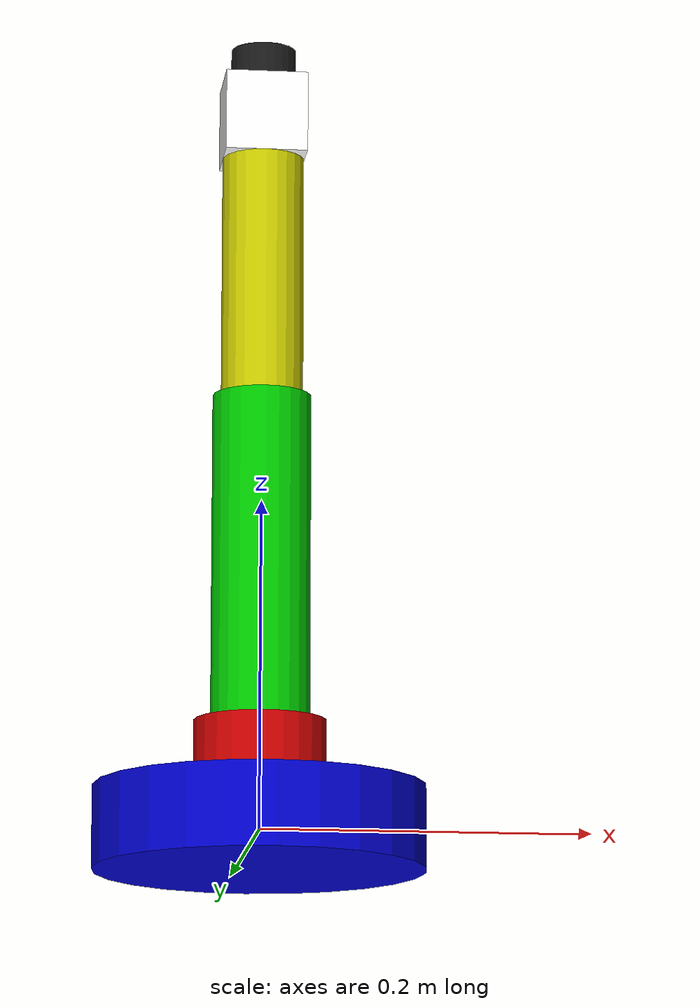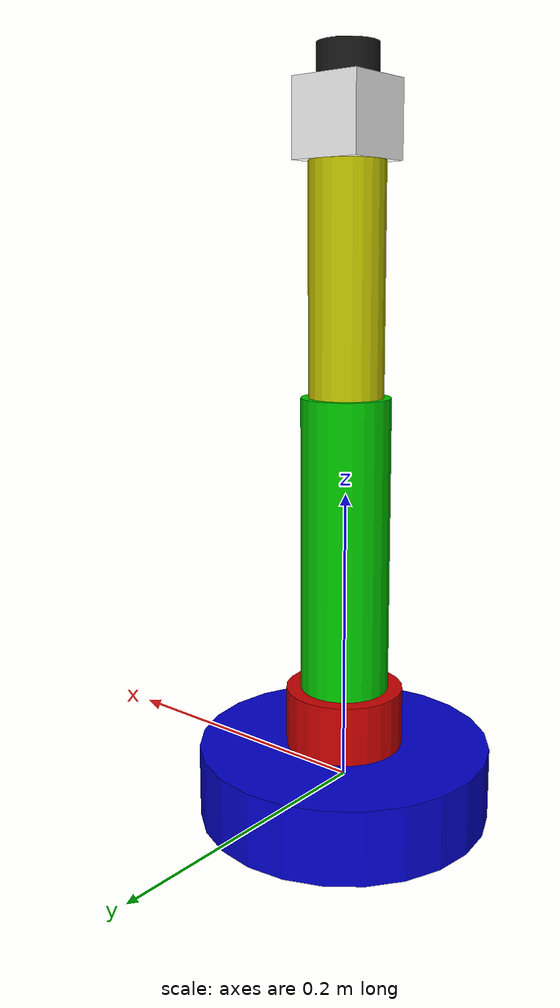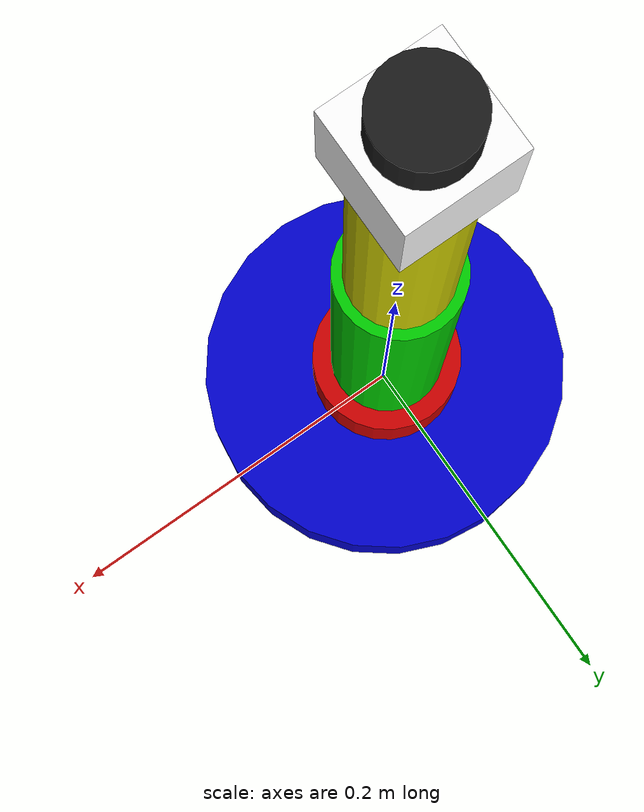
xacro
<?xml version="1.0"?>
<robot xmlns:xacro="http://www.ros.org/wiki/xacro" name="5dof_arm">
    <xacro:arg name="initial_positions_file" default="initial_positions.yaml" />

    <!-- Import 5dof_arm urdf file -->
    <xacro:include filename="$(find arm_simulation_5dof)/urdf/arm_5dof.urdf.xacro" />

    <!-- Import control_xacro -->
    <xacro:include filename="5dof_arm.ros2_control.xacro" />

    <xacro:_5dof_arm_ros2_control name="FakeSystem" initial_positions_file="$(arg initial_positions_file)"/>

</robot>

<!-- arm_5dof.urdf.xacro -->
<robot name="sim_arm" xmlns:xacro="http://www.ros.org/wiki/xacro">

  <xacro:macro name="cylinder_inertia" params="m r h">
    <inertial>
      <origin xyz="0 0 ${h/2}" rpy="0 0 0"/>
      <mass value="${m}"/>
      <inertia ixx="${(m/12) * (3*r*r + h*h)}" ixy="0.0" ixz="0.0"
               iyy="${(m/12) * (3*r*r + h*h)}" iyz="0.0"
               izz="${(m/2) * (r*r)}"/>
    </inertial>
  </xacro:macro>

  <xacro:macro name="box_inertia" params="m x y z">
    <inertial>
      <origin xyz="0 0 ${z/2}" rpy="0 0 0"/>
      <mass value="${m}"/>
      <inertia ixx="${(m/12) * (y*y + z*z)}" ixy="0.0" ixz="0.0"
               iyy="${(m/12) * (x*x + z*z)}" iyz="0.0"
               izz="${(m/12) * (x*x + y*y)}"/>
    </inertial>
  </xacro:macro>

  <link name="base_link"/>

  <joint name="base_joint" type="fixed">
    <parent link="base_link"/>
    <child link="base_plate"/>
    <origin xyz="0 0 0" rpy="0 0 0"/>
  </joint>

  <link name="base_plate">
    <visual>
      <geometry>
        <cylinder radius="0.1" length="0.05"/>
      </geometry>
      <material name="blue">
        <color rgba="0.0 0.0 0.8 1.0"/>
      </material>
    </visual>
    <collision>
      <geometry>
        <cylinder radius="0.1" length="0.05"/>
      </geometry>
    </collision>
    <xacro:cylinder_inertia m="0.5" r="0.1" h="0.05"/>
  </link>

  <joint name="base_yaw_joint" type="revolute">
    <parent link="base_plate"/>
    <child link="shoulder_link"/>
    <origin xyz="0 0 0.025" rpy="0 0 0"/>
    <axis xyz="0 0 1"/>
    <limit lower="-1.5708" upper="1.5708" effort="10" velocity="1"/>
  </joint>

  <link name="shoulder_link">
    <visual>
      <geometry>
        <cylinder radius="0.04" length="0.08"/>
      </geometry>
      <material name="red">
        <color rgba="0.8 0.0 0.0 1.0"/>
      </material>
    </visual>
    <collision>
      <geometry>
        <cylinder radius="0.04" length="0.08"/>
      </geometry>
    </collision>
    <xacro:cylinder_inertia m="0.2" r="0.04" h="0.08"/>
  </link>

  <joint name="shoulder_pitch_joint" type="revolute">
    <parent link="shoulder_link"/>
    <child link="bicep_link"/>
    <origin xyz="0 0 0.04" rpy="0 0 0"/>
    <axis xyz="0 1 0"/>
    <limit lower="-1.5708" upper="1.5708" effort="10" velocity="1"/>
  </joint>

  <link name="bicep_link">
    <visual>
      <origin xyz="0 0 0.1" rpy="0 0 0"/>
      <geometry>
        <cylinder radius="0.03" length="0.2"/>
      </geometry>
      <material name="green">
        <color rgba="0.0 0.8 0.0 1.0"/>
      </material>
    </visual>
    <collision>
      <origin xyz="0 0 0.1" rpy="0 0 0"/>
      <geometry>
        <cylinder radius="0.03" length="0.2"/>
      </geometry>
    </collision>
    <xacro:cylinder_inertia m="0.4" r="0.03" h="0.2"/>
  </link>

  <joint name="elbow_pitch_joint" type="revolute">
    <parent link="bicep_link"/>
    <child link="forearm_link"/>
    <origin xyz="0 0 0.2" rpy="0 0 0"/>
    <axis xyz="0 1 0"/>
    <limit lower="-1.5708" upper="1.5708" effort="10" velocity="1"/>
  </joint>

  <link name="forearm_link">
    <visual>
      <origin xyz="0 0 0.075" rpy="0 0 0"/>
      <geometry>
        <cylinder radius="0.025" length="0.15"/>
      </geometry>
      <material name="yellow">
        <color rgba="0.8 0.8 0.0 1.0"/>
      </material>
    </visual>
    <collision>
      <origin xyz="0 0 0.075" rpy="0 0 0"/>
      <geometry>
        <cylinder radius="0.025" length="0.15"/>
      </geometry>
    </collision>
    <xacro:cylinder_inertia m="0.3" r="0.025" h="0.15"/>
  </link>

  <joint name="wrist_pitch_joint" type="revolute">
    <parent link="forearm_link"/>
    <child link="wrist_link"/>
    <origin xyz="0 0 0.15" rpy="0 0 0"/>
    <axis xyz="0 1 0"/>
    <limit lower="-1.5708" upper="1.5708" effort="10" velocity="1"/>
  </joint>

  <link name="wrist_link">
    <visual>
      <origin xyz="0 0 0.025" rpy="0 0 0"/>
      <geometry>
        <box size="0.05 0.05 0.05"/>
      </geometry>
      <material name="white">
        <color rgba="1.0 1.0 1.0 1.0"/>
      </material>
    </visual>
    <collision>
      <origin xyz="0 0 0.025" rpy="0 0 0"/>
      <geometry>
        <box size="0.05 0.05 0.05"/>
      </geometry>
    </collision>
    <xacro:box_inertia m="0.1" x="0.05" y="0.05" z="0.05"/>
  </link>

  <joint name="wrist_roll_joint" type="revolute">
    <parent link="wrist_link"/>
    <child link="gripper_base_link"/>
    <origin xyz="0 0 0.05" rpy="0 0 0"/>
    <axis xyz="0 0 1"/>
    <limit lower="-1.5708" upper="1.5708" effort="10" velocity="1"/>
  </joint>

  <link name="gripper_base_link">
    <visual>
      <origin xyz="0 0 0.01" rpy="0 0 0"/>
      <geometry>
        <cylinder radius="0.02" length="0.02"/>
      </geometry>
      <material name="black">
        <color rgba="0.1 0.1 0.1 1.0"/>
      </material>
    </visual>
    <collision>
      <origin xyz="0 0 0.01" rpy="0 0 0"/>
      <geometry>
        <cylinder radius="0.02" length="0.02"/>
      </geometry>
    </collision>
    <xacro:cylinder_inertia m="0.1" r="0.02" h="0.02"/>
  </link>

</robot>
